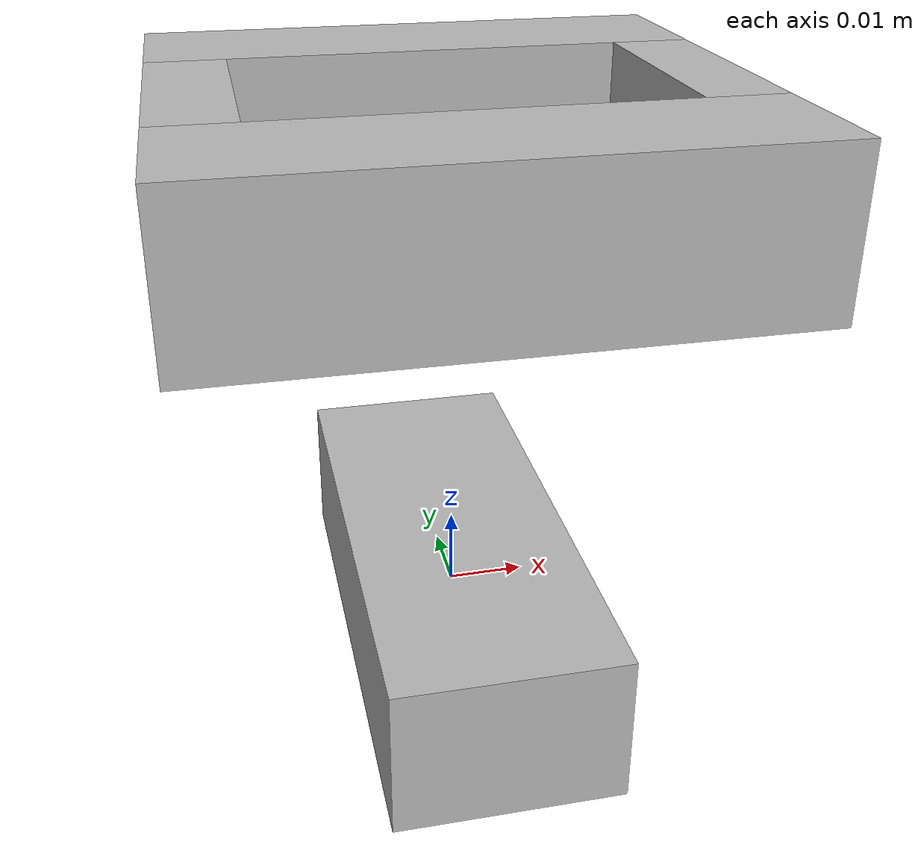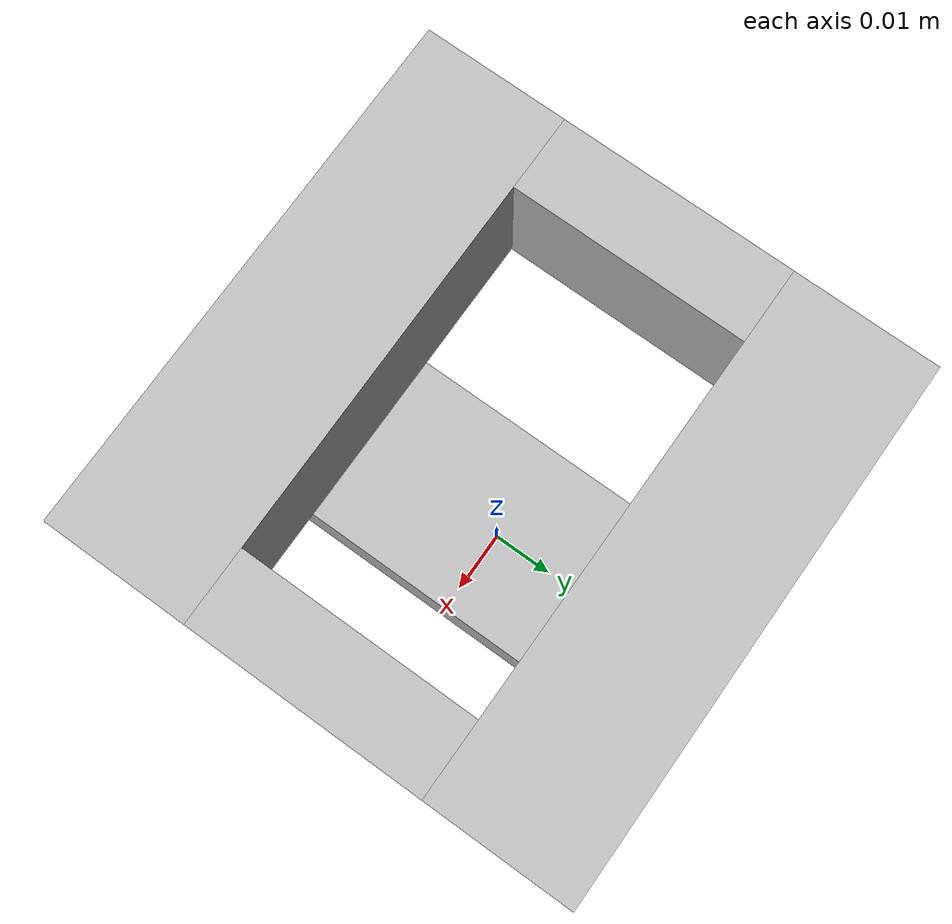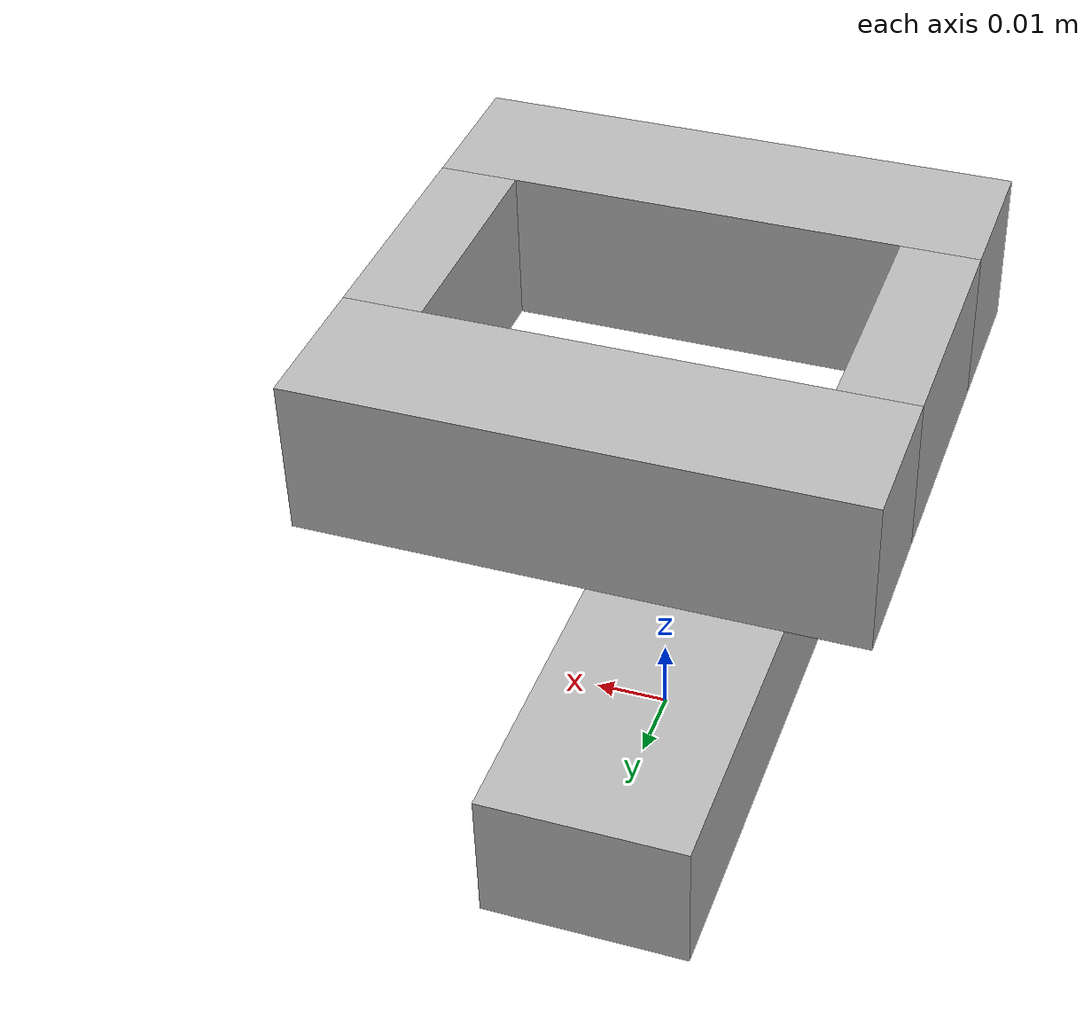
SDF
<?xml version="1.0"?>
<sdf version="1.7">
<world name="w">
<model name="fixed_puzzle">
<link name="bin_base">
	<inertial>
		<mass>1.0</mass>
		<inertia>
			<ixx>1.0</ixx><ixy>0.0</ixy><ixz>0</ixz>
			<iyy>1.0</iyy><iyz>0.0</iyz><izz>1.0</izz>
		</inertia>
	</inertial>
	<visual name="b1">
		<pose>0.0 0.0 0.0 0.0 0.0 0.0</pose>
		<geometry>
			<box><size>0.028999999999999998 0.07 0.02</size></box>
		</geometry>
	</visual>
	<collision name="b1">
		<pose>0.0 0.0 0.0 0.0 0.0 0.0</pose>
		<geometry>
			<box><size>0.028999999999999998 0.07 0.02</size></box>
		</geometry>
	</collision>
	<visual name="b2">
		<pose>0.0 0.025 0.06 0.0 0.0 0.0</pose>
		<geometry>
			<box><size>0.07 0.019000000000000003 0.02</size></box>
		</geometry>
	</visual>
	<collision name="b2">
		<pose>0.0 0.025 0.06 0.0 0.0 0.0</pose>
		<geometry>
			<box><size>0.07 0.019000000000000003 0.02</size></box>
		</geometry>
	</collision>
	<visual name="b3">
		<pose>0.030000000000000002 0.0 0.06 0.0 0.0 0.0</pose>
		<geometry>
			<box><size>0.01 0.031 0.02</size></box>
		</geometry>
	</visual>
	<collision name="b3">
		<pose>0.030000000000000002 0.0 0.06 0.0 0.0 0.0</pose>
		<geometry>
			<box><size>0.01 0.031 0.02</size></box>
		</geometry>
	</collision>
	<visual name="b4">
		<pose>-0.030000000000000002 0.0 0.06 0.0 0.0 0.0</pose>
		<geometry>
			<box><size>0.01 0.031 0.02</size></box>
		</geometry>
	</visual>
	<collision name="b4">
		<pose>-0.030000000000000002 0.0 0.06 0.0 0.0 0.0</pose>
		<geometry>
			<box><size>0.01 0.031 0.02</size></box>
		</geometry>
	</collision>
	<visual name="b5">
		<pose>0.0 -0.025 0.06 0.0 0.0 0.0</pose>
		<geometry>
			<box><size>0.07 0.019000000000000003 0.02</size></box>
		</geometry>
	</visual>
	<collision name="b5">
		<pose>0.0 -0.025 0.06 0.0 0.0 0.0</pose>
		<geometry>
			<box><size>0.07 0.019000000000000003 0.02</size></box>
		</geometry>
	</collision>
</link>
</model>
</world>
</sdf>
